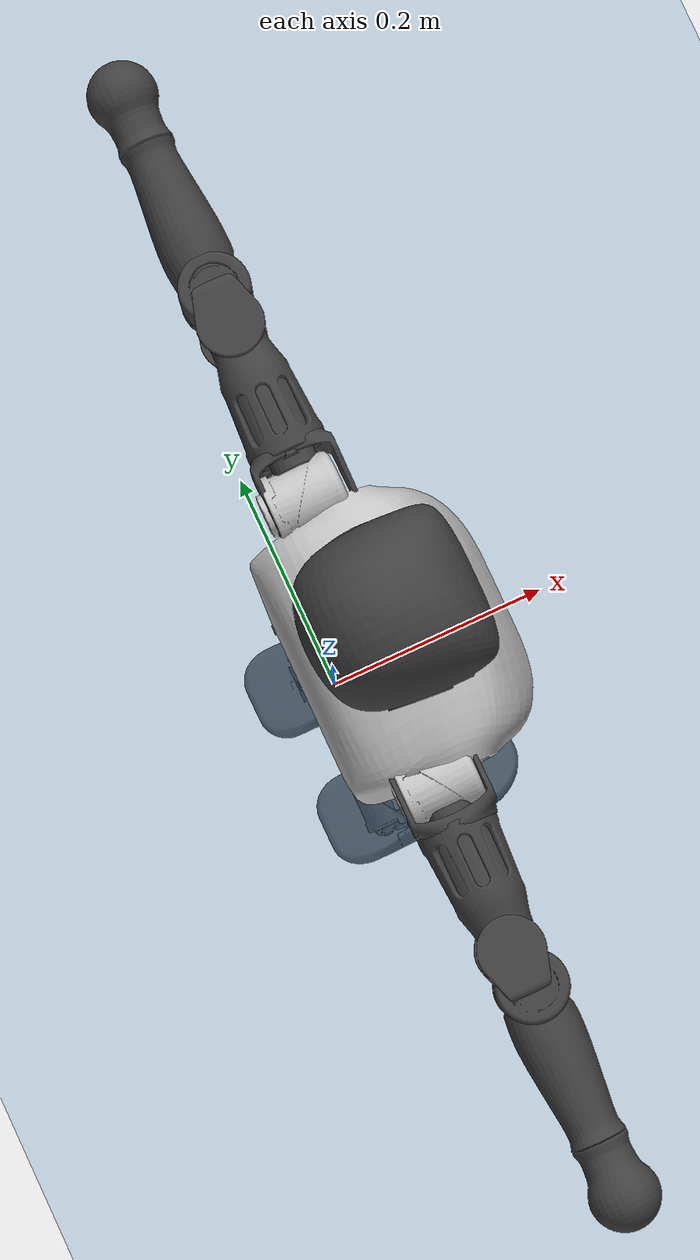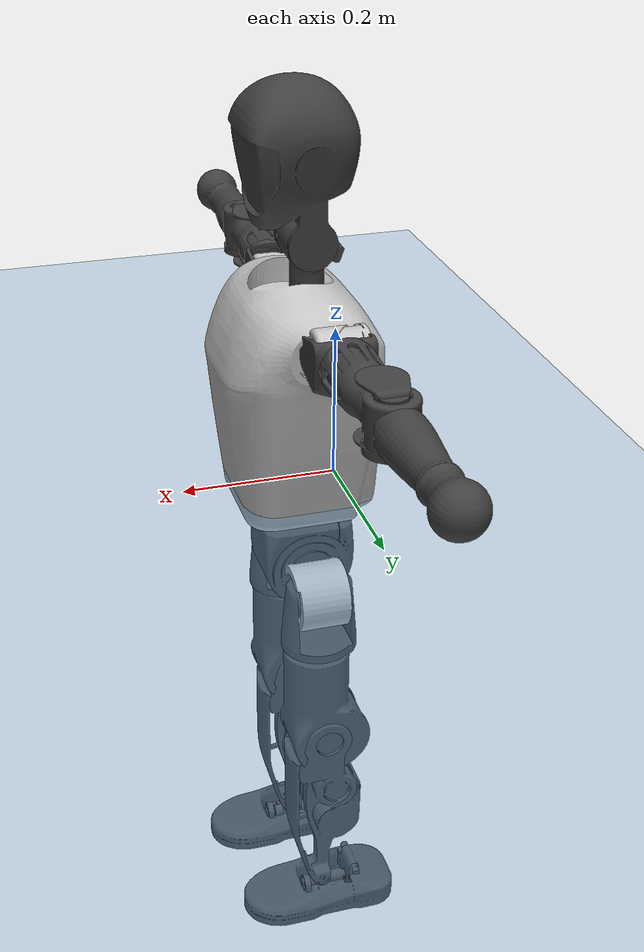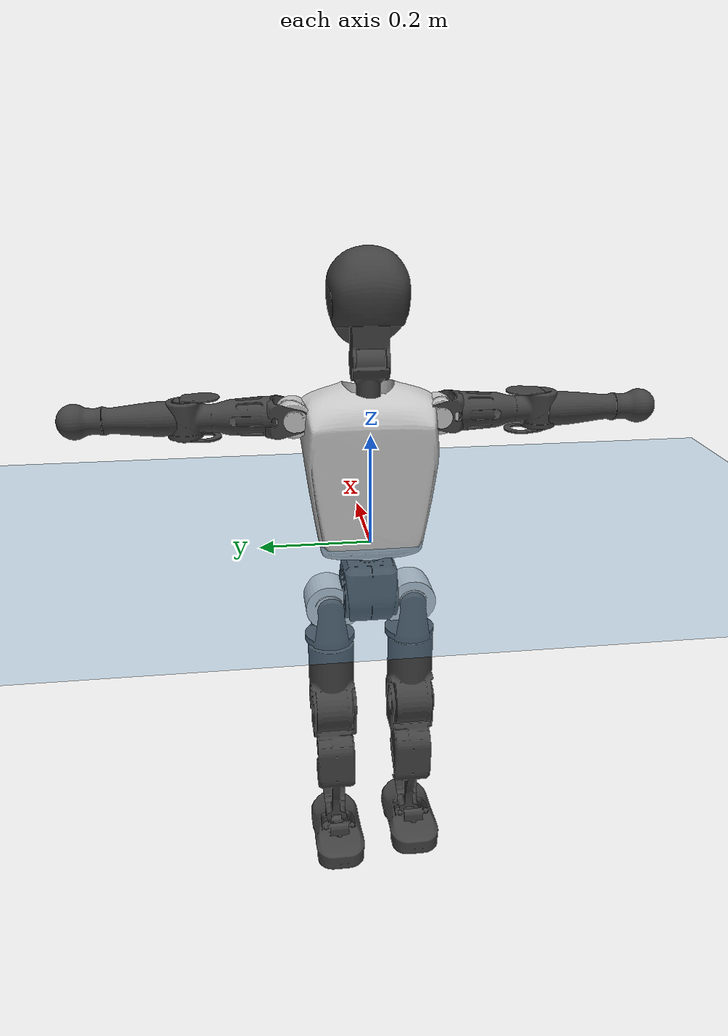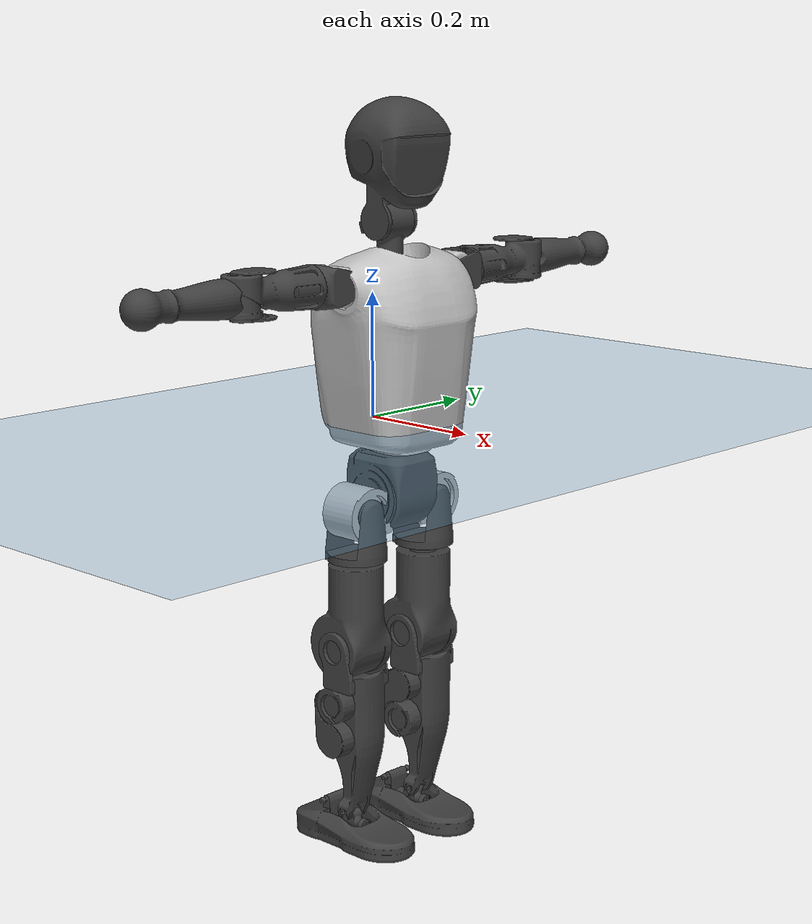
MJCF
<mujoco model="T1">
  <compiler angle="radian" assetdir="assets" balanceinertia="true" inertiafromgeom="false"/>

  <option timestep="0.005" density="1.2" viscosity="2e-05"/>

  <size nkey="1"/>

  <visual>
    <quality shadowsize="8192"/>
    <map shadowclip="0.5"/>
  </visual>

  <default>
    <default class="/">
      <joint armature="0.01" damping="0.01" frictionloss="0.1"/>
      <geom contype="0" conaffinity="0" group="1" solref="-1000 -80"/>
      <site size="0.01 0.005 0.005" group="5"/>
      <general forcelimited="true" biastype="affine" gainprm="25" biasprm="0 -25 -0.6"/>
      <default class="t1">
        <geom rgba="0.25 0.25 0.25 1"/>
        <default class="visual">
          <geom type="mesh" group="2"/>
        </default>
        <default class="collision">
          <geom group="3"/>
        </default>
        <default class="foot">
          <geom size="0.1115 0.05 0.015" type="box" condim="6" group="4" priority="1" solimp="0.015 1 0.015"/>
        </default>
        <default class="reward_collision_sphere">
          <geom group="5" rgba="1 0 0 1"/>
        </default>
      </default>
    </default>
  </default>

  <asset>
    <texture type="skybox" colorspace="auto" name="//unnamed_texture_0" builtin="gradient" rgb1="0.95 0.95 0.95" rgb2="0.95 0.95 0.95" width="100" height="600"/>
    <texture type="2d" colorspace="auto" name="texplane" builtin="checker" rgb1="0.345 0.575 0.748" rgb2="0.345 0.575 0.748" markrgb="1 1 1" width="512" height="512"/>
    <material name="MatPlane" class="/" texture="texplane" texuniform="true" texrepeat="2 2" specular="0.9"/>
    <mesh name="Trunk" class="/" file="Trunk.stl"/>
    <mesh name="H1" class="/" file="H1.stl"/>
    <mesh name="H2" class="/" file="H2.stl"/>
    <mesh name="AL1" class="/" file="AL1.stl"/>
    <mesh name="AL2" class="/" file="AL2.stl"/>
    <mesh name="AL3" class="/" file="AL3.stl"/>
    <mesh name="left_hand_link" class="/" file="left_hand_link.stl"/>
    <mesh name="AR1" class="/" file="AR1.stl"/>
    <mesh name="AR2" class="/" file="AR2.stl"/>
    <mesh name="AR3" class="/" file="AR3.stl"/>
    <mesh name="right_hand_link" class="/" file="right_hand_link.stl"/>
    <mesh name="Waist" class="/" file="Waist.stl"/>
    <mesh name="Hip_Pitch_Left" class="/" file="Hip_Pitch_Left.stl"/>
    <mesh name="Hip_Roll_Left" class="/" file="Hip_Roll_Left.stl"/>
    <mesh name="Hip_Yaw_Left" class="/" file="Hip_Yaw_Left.stl"/>
    <mesh name="Shank_Left" class="/" file="Shank_Left.stl"/>
    <mesh name="Ankle_Cross_Left" class="/" file="Ankle_Cross_Left.stl"/>
    <mesh name="left_foot_link" class="/" file="left_foot_link.stl"/>
    <mesh name="Hip_Pitch_Right" class="/" file="Hip_Pitch_Right.stl"/>
    <mesh name="Hip_Roll_Right" class="/" file="Hip_Roll_Right.stl"/>
    <mesh name="Hip_Yaw_Right" class="/" file="Hip_Yaw_Right.stl"/>
    <mesh name="Shank_Right" class="/" file="Shank_Right.stl"/>
    <mesh name="Ankle_Cross_Right" class="/" file="Ankle_Cross_Right.stl"/>
    <mesh name="right_foot_link" class="/" file="right_foot_link.stl"/>
  </asset>

  <worldbody>
    <geom name="floor" class="/" size="100 100 0.125" type="plane" group="0" material="MatPlane"/>
    <light name="toplight_shadow" class="/" pos="0 0 5" dir="0.0990148 0.0990148 -0.990148" type="directional" ambient="0.04 0.04 0.04" diffuse="0.55 0.55 0.55" specular="0.12 0.12 0.12"/>
    <light name="toplight_fill" class="/" pos="0 0 5" dir="0.0990148 0.0990148 -0.990148" type="directional" castshadow="false" ambient="0.04 0.04 0.04" diffuse="0.3 0.3 0.3" specular="0.08 0.08 0.08"/>
    <body name="trunk" childclass="t1" pos="0.000281305 -0.00225304 0.000865003" quat="1 -0.000432406 0.000337694 0.000517716">
      <inertial pos="0.0354367 -0.000421419 0.105857" quat="0.999962 -0.000283532 -0.00871206 0.000135938" mass="6.32475" diaginertia="0.0108485 0.019454 0.0666378"/>
      <joint name="//unnamed_joint_0" type="free" armature="0" damping="0" frictionloss="0"/>
      <geom name="//unnamed_geom_1" class="visual" rgba="0.76 0.76 0.76 1" mesh="Trunk"/>
      <geom name="//unnamed_geom_2" class="collision" size="0.0612608 0.0816811 0.122522" pos="0.0393861 0 0.123599" type="box"/>
      <geom name="//unnamed_geom_3" class="reward_collision_sphere" size="0.0939333" pos="0.0393861 0 0.103"/>
      <geom name="//unnamed_geom_4" class="reward_collision_sphere" size="0.0122522" pos="0.0393861 0.0649403 0"/>
      <geom name="//unnamed_geom_5" class="reward_collision_sphere" size="0.0122522" pos="0.0393861 -0.0649403 0"/>
      <geom name="//unnamed_geom_6" class="reward_collision_sphere" size="0.0122522" pos="0.0393861 0.0817484 0.185399"/>
      <geom name="//unnamed_geom_7" class="reward_collision_sphere" size="0.0122522" pos="0.0393861 -0.0817484 0.185399"/>
      <site name="imu" pos="0.00540994 0.0117784 -0.00532186" size="0.00816811"/>
      <camera name="track" pos="0 -1.52801 0" quat="0.707107 0.707107 0 0" mode="trackcom"/>
      <camera name="ego_camera" pos="0.080085 0 0.432598" quat="-0.5 -0.5 0.5 0.5"/>
      <body name="H1" pos="0.0370683 0.00197946 0.253662" quat="0.999999 0.0002071 0.00120505 0.000173614">
        <inertial pos="-0.00306184 -0.00341796 0.0615216" quat="0.760135 -0.011893 0.00456458 0.649641" mass="0.254006" diaginertia="3.10214e-05 6.24991e-05 0.000177739"/>
        <joint name="AAHead_yaw" pos="0 0 0" axis="-0.00460263 -0.00571528 0.999973" range="-1.61981 1.53798" armature="0.00752397" damping="0.0124225" frictionloss="0.083159"/>
        <geom name="//unnamed_geom_8" class="visual" mesh="H1"/>
        <body name="H2" pos="0.000331736 -0.00175215 0.0631218" quat="0.999999 0.000172517 -0.000894231 0.000484795">
          <inertial pos="0.00367443 -0.000307838 0.100343" quat="0.987204 0.108714 -0.0807879 -0.0841596" mass="0.341108" diaginertia="0.00024525 0.000515211 0.00199664"/>
          <joint name="Head_pitch" pos="0 0 0" axis="0.00993983 -0.999919 -0.00794285" range="-1.20774 0.346368" armature="0.00883219" damping="0.00301458" frictionloss="0.0685357"/>
          <geom name="//unnamed_geom_9" class="visual" mesh="H2"/>
          <geom name="//unnamed_geom_10" class="collision" size="0.0653449" pos="0.00656435 0 0.113299"/>
          <geom name="//unnamed_geom_11" class="reward_collision_sphere" size="0.073513" pos="0.0131287 0 0.103"/>
        </body>
      </body>
      <body name="AL1" pos="0.036611 0.0865328 0.227715" quat="1 -1.6577e-05 0.000285845 0.000115218">
        <inertial pos="0.00107118 0.0349317 -0.00338091" quat="0.503764 0.494483 -0.507426 0.494193" mass="0.285572" diaginertia="0.000160998 0.000327194 0.000329194"/>
        <joint name="Left_Shoulder_Pitch" pos="0 0 0" axis="-0.000867289 0.999958 0.00908417" stiffness="0.00968927" range="-3.33351 1.17737" armature="0.00732061" damping="0.005811" frictionloss="0.0782382"/>
        <geom name="//unnamed_geom_12" class="visual" rgba="0.76 0.76 0.76 1" mesh="AL1"/>
        <body name="AL2" pos="0.00410479 0.0398302 -0.00103944" quat="1 -0.000247895 -0.000116359 -3.11484e-06">
          <inertial pos="0.00459747 0.0268806 0.000222997" quat="0.487675 0.513359 -0.487853 0.510525" mass="0.0912397" diaginertia="4.97115e-05 9.04581e-05 0.000211388"/>
          <joint name="Left_Shoulder_Roll" pos="0 0 0" axis="-0.999923 0.00674334 -0.0103883" range="-1.55935 1.77059" armature="0.00857024" damping="0.0122555" frictionloss="0.0850394"/>
          <geom name="//unnamed_geom_13" class="visual" mesh="AL2"/>
          <body name="AL3" pos="1.62957e-05 0.0450108 0.00256245" quat="1 -2.045e-05 0.000168393 2.21393e-05">
            <inertial pos="-0.00222824 0.0653184 0.000209147" quat="0.700865 0.713268 -0.0041674 0.0043855" mass="0.536067" diaginertia="0.00157456 0.00325878 0.000729918"/>
            <joint name="Left_Elbow_Pitch" pos="0 0 0" axis="-0.0001333 -1 -0.000105683" range="-2.32706 2.23128" armature="0.0079332" damping="0" frictionloss="0.0724629"/>
            <geom name="//unnamed_geom_14" class="visual" mesh="AL3"/>
            <geom name="//unnamed_geom_15" class="collision" size="0.0245043 0.0612608" pos="0 0.0382002 0" quat="0.707105 0.707108 0 0" type="cylinder"/>
            <geom name="//unnamed_geom_16" class="reward_collision_sphere" size="0.0294052"/>
            <body name="left_hand_link" pos="-0.000613138 0.113925 0.00154197" quat="1 0.000862512 -4.84525e-05 0.000320423">
              <inertial pos="-0.000938515 0.0826322 0.00093306" quat="0.714112 0.69996 -0.00843597 0.00533613" mass="0.17895" diaginertia="0.00100629 0.00205778 0.000249435"/>
              <joint name="Left_Elbow_Yaw" pos="0 0 0" axis="0.000181147 -0.000218811 1" range="-2.47184 -0.0486519" armature="0.00888052" damping="0.0209793" frictionloss="0.0824974"/>
              <geom name="//unnamed_geom_17" class="visual" mesh="left_hand_link"/>
              <geom name="//unnamed_geom_18" class="collision" size="0.0245043 0.071471" pos="0 0.0993205 0" quat="0.707105 0.707108 0 0" type="cylinder"/>
              <geom name="//unnamed_geom_19" class="reward_collision_sphere" size="0.0408406"/>
              <geom name="//unnamed_geom_20" class="reward_collision_sphere" size="0.0285884" pos="0 0.0840404 0"/>
              <geom name="//unnamed_geom_21" class="reward_collision_sphere" size="0.0285884" pos="0 0.164261 0"/>
            </body>
          </body>
        </body>
      </body>
      <body name="AR1" pos="0.0367537 -0.0756814 0.22503" quat="0.999999 0.000213497 -0.00102502 0.000613048">
        <inertial pos="-0.00169153 -0.0372966 0.00255966" quat="0.501693 0.497078 -0.502524 0.498685" mass="0.283567" diaginertia="0.000161613 0.000327709 0.000328707"/>
        <joint name="Right_Shoulder_Pitch" pos="0 0 0" axis="0.0115398 -0.999879 0.0104309" range="-1.1934 3.29623" armature="0.00704736" damping="0.0116149" frictionloss="0.0714558"/>
        <geom name="//unnamed_geom_22" class="visual" rgba="0.76 0.76 0.76 1" mesh="AR1"/>
        <body name="AR2" pos="0.000261408 -0.0340852 0.00162623" quat="1 1.01541e-05 -1.20757e-05 -1.41571e-05">
          <inertial pos="-0.000292519 -0.026635 -0.00112339" quat="0.512461 0.48451 -0.510711 0.49174" mass="0.0855338" diaginertia="4.83052e-05 9.10473e-05 0.000203897"/>
          <joint name="Right_Shoulder_Roll" pos="0 0 0" axis="-0.999985 0.00192253 0.00505016" range="-1.78577 1.52539" armature="0.00816063" damping="0.00629803" frictionloss="0.0763586"/>
          <geom name="//unnamed_geom_23" class="visual" mesh="AR2"/>
          <body name="AR3" pos="-0.00217436 -0.0475064 0.000582252" quat="1 5.66647e-05 1.80304e-05 0.000344227">
            <inertial pos="-0.00333848 -0.0654153 0.00307172" quat="0.705064 0.709082 0.00321788 -0.00885345" mass="0.550218" diaginertia="0.00154396 0.00309814 0.00067644"/>
            <joint name="Right_Elbow_Pitch" pos="0 0 0" axis="-0.00186907 0.999951 0.00975805" range="-2.32189 2.34067" armature="0.00772722" damping="0.0129224" frictionloss="0.0910751"/>
            <geom name="//unnamed_geom_24" class="visual" mesh="AR3"/>
            <geom name="//unnamed_geom_25" class="collision" size="0.0245043 0.0612608" pos="0 -0.0382002 0" quat="0.707105 0.707108 0 0" type="cylinder"/>
            <geom name="//unnamed_geom_26" class="reward_collision_sphere" size="0.0294052"/>
            <body name="right_hand_link" pos="-0.00309737 -0.113762 -0.0012213" quat="1 -1.89838e-05 -3.25089e-05 1.05114e-05">
              <inertial pos="-0.00245397 -0.0809404 0.00165295" quat="0.705369 0.708831 0.00189905 0.00321016" mass="0.190778" diaginertia="0.0010733 0.00215238 0.000252974"/>
              <joint name="Right_Elbow_Yaw" pos="0 0 0" axis="0.000699173 0.001812 0.999998" range="-0.0133176 2.45324" armature="0.00720364" damping="0.0168854" frictionloss="0.0814235"/>
              <geom name="//unnamed_geom_27" class="visual" mesh="right_hand_link"/>
              <geom name="//unnamed_geom_28" class="collision" size="0.0245043 0.071471" pos="0 -0.0993205 0" quat="0.707105 0.707108 0 0" type="cylinder"/>
              <geom name="//unnamed_geom_29" class="reward_collision_sphere" size="0.0408406"/>
              <geom name="//unnamed_geom_30" class="reward_collision_sphere" size="0.0285884" pos="0 -0.0840404 0"/>
              <geom name="//unnamed_geom_31" class="reward_collision_sphere" size="0.0285884" pos="0 -0.164261 0"/>
            </body>
          </body>
        </body>
      </body>
      <body name="Waist" pos="0.0428053 0.000990016 -0.116457" quat="1 -3.00206e-05 -0.000730724 0.000480217">
        <inertial pos="0.00523592 -2.23402e-05 0.00623748" quat="0.983246 0.00198363 -0.182184 0.00562261" mass="1.38058" diaginertia="0.000619759 0.0013175 0.00535287"/>
        <joint name="Waist" pos="0 0 0" axis="-0.0105172 -0.00891965 0.999905" range="-1.61817 1.51914" armature="0.00832743" damping="0.0176284" frictionloss="0.0892064"/>
        <geom name="//unnamed_geom_32" class="visual" mesh="Waist"/>
        <body name="Hip_Pitch_Left" pos="0.00221998 0.0777135 -0.000559285" quat="1 -6.62148e-06 0.000205071 -0.000349388">
          <inertial pos="-0.00158261 -0.00529925 -0.0177094" quat="0.97658 0.213884 0.0224793 -0.0062924" mass="0.543841" diaginertia="0.000214097 0.000367467 0.00140752"/>
          <joint name="Left_Hip_Pitch" pos="0 0 0" axis="0.00485978 0.999905 -0.0128683" stiffness="0.00994647" range="-1.76416 1.55878" armature="0.00710321" damping="0.00538186" frictionloss="0.0783667"/>
          <geom name="//unnamed_geom_33" class="visual" rgba="0.76 0.76 0.76 1" mesh="Hip_Pitch_Left"/>
          <body name="Hip_Roll_Left" pos="-0.00153968 -0.00225045 -0.0217182" quat="1 -8.22092e-05 -0.000294341 0.000848962">
            <inertial pos="-0.00115848 0.000926838 -0.0550643" quat="0.707225 -0.0038759 -8.10771e-06 0.706978" mass="0.21018" diaginertia="0.000210396 0.000395525 0.000604955"/>
            <joint name="Left_Hip_Roll" pos="0 0 0" axis="-0.999898 -0.01404 -0.00270224" stiffness="0.00608408" range="-1.61976 0.170444" armature="0.00887764" damping="0.0201291" frictionloss="0.086057"/>
            <geom name="//unnamed_geom_34" class="visual" mesh="Hip_Roll_Left"/>
            <geom name="//unnamed_geom_35" class="reward_collision_sphere" size="0.0449246"/>
            <body name="Hip_Yaw_Left" pos="-0.000289049 -0.00198625 -0.0887206" quat="1 -2.38444e-05 -8.43137e-05 -0.000338807">
              <inertial pos="-0.006613 -0.000118912 -0.0892586" quat="0.696194 -0.0331983 -0.0338197 0.716288" mass="1.21025" diaginertia="0.00333412 0.00695346 0.00317831"/>
              <joint name="Left_Hip_Yaw" pos="0 0 0" axis="-0.00307332 0.00247322 -0.999992" range="-1.05459 0.940042" armature="0.00901132" damping="0.0265872" frictionloss="0.0792031"/>
              <geom name="//unnamed_geom_36" class="visual" mesh="Hip_Yaw_Left"/>
              <geom name="//unnamed_geom_37" class="collision" size="0.0408406 0.0653449" type="cylinder"/>
              <body name="Shank_Left" pos="-0.00899423 -0.00300296 -0.136704" quat="1 0.000237001 -0.000494011 -0.000787951">
                <inertial pos="-0.00563048 0.00126679 -0.127818" quat="0.998014 -0.00689139 -0.0204779 0.0591634" mass="0.913917" diaginertia="0.0041312 0.00857089 0.00207609"/>
                <joint name="Left_Knee_Pitch" pos="0 0 0" axis="-0.00722638 0.999967 0.00367485" range="0.0385741 2.34654" armature="0.00809755" damping="0" frictionloss="0.0708841"/>
                <geom name="//unnamed_geom_38" class="visual" mesh="Shank_Left"/>
                <geom name="//unnamed_geom_39" class="collision" size="0.0408406 0.0612608" pos="0 0 -0.123599" type="cylinder"/>
                <geom name="//unnamed_geom_40" class="reward_collision_sphere" size="0.0530927"/>
                <body name="Ankle_Cross_Left" pos="-0.00433238 -0.00348971 -0.288605" quat="0.999999 -0.000311438 -0.000699243 0.00113844">
                  <inertial pos="-0.000858769 -0.00146135 -0.00809385" quat="0.442238 0.552262 0.548992 0.445016" mass="0.0391719" diaginertia="3.60299e-06 6.79691e-06 1.293e-05"/>
                  <joint name="Left_Ankle_Pitch" pos="0 0 0" axis="-0.000106082 1 1.07504e-05" stiffness="0.0100835" range="-0.900007 0.396335" armature="0.00855007" damping="0.0210495" frictionloss="0.0893644"/>
                  <geom name="//unnamed_geom_41" class="visual" mesh="Ankle_Cross_Left"/>
                  <body name="left_foot_link" pos="-0.00335358 0.00172868 -0.0140545" quat="0.999999 -0.000814278 0.00067558 0.00054701">
                    <inertial pos="0.00127813 -0.000867699 -0.0119318" quat="-0.00804081 0.625461 -0.00210544 0.780211" mass="0.365024" diaginertia="0.00033589 0.000637795 0.00253236"/>
                    <joint name="Left_Ankle_Roll" pos="0 0 0" axis="-0.999997 0.00217423 0.000602453" stiffness="0.000520602" range="-0.420385 0.472631" armature="0.0090943" damping="0.00296032" frictionloss="0.0872081"/>
                    <geom name="//unnamed_geom_42" class="visual" mesh="left_foot_link"/>
                    <geom name="left_foot" class="foot" size="0.100729 0.0381336 0.0116192" pos="0.00656435 0 -0.0154499"/>
                    <geom name="//unnamed_geom_44" class="reward_collision_sphere" size="0.0424742" pos="0.00656435 0 -0.0154499"/>
                    <geom name="//unnamed_geom_45" class="reward_collision_sphere" size="0.0245043" pos="0.0623613 -0.0175721 -0.0154499"/>
                    <geom name="//unnamed_geom_46" class="reward_collision_sphere" size="0.0245043" pos="-0.0459504 -0.0175721 -0.0154499"/>
                    <site name="left_foot" class="foot" pos="0.00656435 0 -0.0154499" size="0.00816811"/>
                  </body>
                </body>
              </body>
            </body>
          </body>
        </body>
        <body name="Hip_Pitch_Right" pos="0.00475994 -0.0817997 0.000205955" quat="1 -0.000163438 -0.000392255 -0.000125312">
          <inertial pos="0.00259512 0.00512493 -0.0167218" quat="0.974012 -0.225806 0.017654 -0.000299668" mass="0.559829" diaginertia="0.000214024 0.000394779 0.0014135"/>
          <joint name="Right_Hip_Pitch" pos="0 0 0" axis="0.00267346 -0.999995 -0.00149285" range="-1.62257 1.81175" armature="0.00871142" damping="0.0114194" frictionloss="0.0712173"/>
          <geom name="//unnamed_geom_47" class="visual" rgba="0.76 0.76 0.76 1" mesh="Hip_Pitch_Right"/>
          <body name="Hip_Roll_Right" pos="-0.00177936 0.000726886 -0.0202501" quat="1 4.65986e-05 -0.000107407 1.8523e-05">
            <inertial pos="0.00314642 0.00233836 -0.0542639" quat="0.707207 -0.00611527 -0.00523588 0.706961" mass="0.210589" diaginertia="0.000218716 0.000406449 0.000617908"/>
            <joint name="Right_Hip_Roll" pos="0 0 0" axis="-0.999869 -0.0159703 -0.00274615" range="-0.199695 1.62091" armature="0.00895434" damping="0.0153582" frictionloss="0.089769"/>
            <geom name="//unnamed_geom_48" class="visual" mesh="Hip_Roll_Right"/>
            <geom name="//unnamed_geom_49" class="reward_collision_sphere" size="0.0449246"/>
            <body name="Hip_Yaw_Right" pos="-0.00126692 -0.00267707 -0.0839932" quat="1 -6.09152e-05 -1.91113e-05 0.000257092">
              <inertial pos="-0.00621042 -0.00162184 -0.0906912" quat="0.710092 -0.0354296 -0.0200983 0.70293" mass="1.22283" diaginertia="0.00324057 0.00675592 0.00309736"/>
              <joint name="Right_Hip_Yaw" pos="0 0 0" axis="-0.00949715 0.0120766 -0.999882" range="-0.978836 1.02412" armature="0.00797013" damping="0" frictionloss="0.0841135"/>
              <geom name="//unnamed_geom_50" class="visual" mesh="Hip_Yaw_Right"/>
              <geom name="//unnamed_geom_51" class="collision" size="0.0408406 0.0653449" type="cylinder"/>
              <body name="Shank_Right" pos="-0.0106188 -0.00101334 -0.139671" quat="1 0.000458785 -0.000324099 0.00064913">
                <inertial pos="-0.0021626 0.000310251 -0.12463" quat="0.999098 -0.00590399 -0.0203803 -0.0367863" mass="0.913845" diaginertia="0.00415726 0.00889204 0.0022489"/>
                <joint name="Right_Knee_Pitch" pos="0 0 0" axis="-0.00586369 -0.999982 0.00147085" stiffness="0.0115188" range="-2.32618 0.0224676" armature="0.00829399" damping="0" frictionloss="0.0814593"/>
                <geom name="//unnamed_geom_52" class="visual" mesh="Shank_Right"/>
                <geom name="//unnamed_geom_53" class="collision" size="0.0408406 0.0612608" pos="0 0 -0.123599" type="cylinder"/>
                <geom name="//unnamed_geom_54" class="reward_collision_sphere" size="0.0530927"/>
                <body name="Ankle_Cross_Right" pos="0.00497286 -0.000710489 -0.286223" quat="1 -0.000128306 -0.000122984 -0.000242792">
                  <inertial pos="-0.00334607 0.000382156 -0.00730323" quat="0.442738 0.552172 0.5505 0.442762" mass="0.0393571" diaginertia="3.6659e-06 6.62088e-06 1.29887e-05"/>
                  <joint name="Right_Ankle_Pitch" pos="0 0 0" axis="-0.00443462 -0.999989 0.00177595" stiffness="0.0100305" range="-0.283784 0.886048" armature="0.00826295" damping="0.00888575" frictionloss="0.0748955"/>
                  <geom name="//unnamed_geom_55" class="visual" mesh="Ankle_Cross_Right"/>
                  <body name="right_foot_link" pos="0.00119515 -0.00394426 -0.0110097" quat="1 -0.000141821 0.00034535 -0.000171686">
                    <inertial pos="2.98987e-05 0.000235392 -0.00924018" quat="0.00557533 0.613296 0.00334178 0.789826" mass="0.356985" diaginertia="0.000318232 0.000621353 0.00261751"/>
                    <joint name="Right_Ankle_Roll" pos="0 0 0" axis="-0.999934 0.00526666 -0.0102005" range="-0.478124 0.400644" armature="0.00835103" damping="0.0126942" frictionloss="0.0911554"/>
                    <geom name="//unnamed_geom_56" class="visual" mesh="right_foot_link"/>
                    <geom name="right_foot" class="foot" size="0.0947229 0.0469232 0.011797" pos="0.00656435 0 -0.0154499"/>
                    <geom name="//unnamed_geom_58" class="reward_collision_sphere" size="0.0326724"/>
                    <geom name="//unnamed_geom_59" class="reward_collision_sphere" size="0.0245043" pos="0.00656435 0 -0.0154499"/>
                    <geom name="//unnamed_geom_60" class="reward_collision_sphere" size="0.0245043" pos="0.0623613 0.0175721 -0.0154499"/>
                    <geom name="//unnamed_geom_61" class="reward_collision_sphere" size="0.0245043" pos="-0.0459504 0.0175721 -0.0154499"/>
                    <site name="right_foot" class="foot" pos="0.00656435 0 -0.0154499" size="0.00816811"/>
                  </body>
                </body>
              </body>
            </body>
          </body>
        </body>
      </body>
    </body>
  </worldbody>

  <contact>
    <pair class="/" geom1="floor" geom2="left_foot" name="//unnamed_contact_0"/>
    <pair class="/" geom1="floor" geom2="right_foot" name="//unnamed_contact_1"/>
  </contact>

  <actuator>
    <general name="AAHead_yaw" class="/" joint="AAHead_yaw" forcerange="-5.15709 5.15709" gainprm="21.6946" biasprm="0 -21.6946 -0.511578"/>
    <general name="Head_pitch" class="/" joint="Head_pitch" forcerange="-6.29565 6.29565" gainprm="21.6946" biasprm="0 -21.6946 -0.511578"/>
    <general name="Left_Shoulder_Pitch" class="/" joint="Left_Shoulder_Pitch" forcerange="-16.5336 16.5336" gainprm="21.6946" biasprm="0 -21.6946 -0.511578"/>
    <general name="Left_Shoulder_Roll" class="/" joint="Left_Shoulder_Roll" forcerange="-15.1766 15.1766" gainprm="21.6946" biasprm="0 -21.6946 -0.511578"/>
    <general name="Left_Elbow_Pitch" class="/" joint="Left_Elbow_Pitch" forcerange="-13.4888 13.4888" gainprm="21.6946" biasprm="0 -21.6946 -0.511578"/>
    <general name="Left_Elbow_Yaw" class="/" joint="Left_Elbow_Yaw" forcerange="-15.1849 15.1849" gainprm="21.6946" biasprm="0 -21.6946 -0.511578"/>
    <general name="Right_Shoulder_Pitch" class="/" joint="Right_Shoulder_Pitch" forcerange="-13.6925 13.6925" gainprm="21.6946" biasprm="0 -21.6946 -0.511578"/>
    <general name="Right_Shoulder_Roll" class="/" joint="Right_Shoulder_Roll" forcerange="-14.3541 14.3541" gainprm="21.6946" biasprm="0 -21.6946 -0.511578"/>
    <general name="Right_Elbow_Pitch" class="/" joint="Right_Elbow_Pitch" forcerange="-13.6382 13.6382" gainprm="21.6946" biasprm="0 -21.6946 -0.511578"/>
    <general name="Right_Elbow_Yaw" class="/" joint="Right_Elbow_Yaw" forcerange="-13.5835 13.5835" gainprm="21.6946" biasprm="0 -21.6946 -0.511578"/>
    <general name="Waist" class="/" joint="Waist" forcerange="-22.7285 22.7285" gainprm="21.6946" biasprm="0 -21.6946 -0.511578"/>
    <general name="Left_Hip_Pitch" class="/" joint="Left_Hip_Pitch" forcerange="-36.2658 36.2658" gainprm="21.6946" biasprm="0 -21.6946 -0.511578"/>
    <general name="Left_Hip_Roll" class="/" joint="Left_Hip_Roll" forcerange="-22.4951 22.4951" gainprm="21.6946" biasprm="0 -21.6946 -0.511578"/>
    <general name="Left_Hip_Yaw" class="/" joint="Left_Hip_Yaw" forcerange="-22.5497 22.5497" gainprm="21.6946" biasprm="0 -21.6946 -0.511578"/>
    <general name="Left_Knee_Pitch" class="/" joint="Left_Knee_Pitch" forcerange="-53.3799 53.3799" gainprm="21.6946" biasprm="0 -21.6946 -0.511578"/>
    <general name="Left_Ankle_Pitch" class="/" joint="Left_Ankle_Pitch" forcerange="-15.1197 15.1197" gainprm="21.6946" biasprm="0 -21.6946 -0.511578"/>
    <general name="Left_Ankle_Roll" class="/" joint="Left_Ankle_Roll" forcerange="-12.687 12.687" gainprm="21.6946" biasprm="0 -21.6946 -0.511578"/>
    <general name="Right_Hip_Pitch" class="/" joint="Right_Hip_Pitch" forcerange="-36.1823 36.1823" gainprm="21.6946" biasprm="0 -21.6946 -0.511578"/>
    <general name="Right_Hip_Roll" class="/" joint="Right_Hip_Roll" forcerange="-23.5676 23.5676" gainprm="21.6946" biasprm="0 -21.6946 -0.511578"/>
    <general name="Right_Hip_Yaw" class="/" joint="Right_Hip_Yaw" forcerange="-23.9883 23.9883" gainprm="21.6946" biasprm="0 -21.6946 -0.511578"/>
    <general name="Right_Knee_Pitch" class="/" joint="Right_Knee_Pitch" forcerange="-46.6068 46.6068" gainprm="21.6946" biasprm="0 -21.6946 -0.511578"/>
    <general name="Right_Ankle_Pitch" class="/" joint="Right_Ankle_Pitch" forcerange="-16.5716 16.5716" gainprm="21.6946" biasprm="0 -21.6946 -0.511578"/>
    <general name="Right_Ankle_Roll" class="/" joint="Right_Ankle_Roll" forcerange="-12.1648 12.1648" gainprm="21.6946" biasprm="0 -21.6946 -0.511578"/>
  </actuator>

  <sensor>
    <gyro site="imu" name="imu_angular_velocity"/>
    <velocimeter site="imu" name="imu_linear_velocity"/>
    <framelinvel objtype="site" objname="left_foot" name="left_foot_global_linear_velocity"/>
    <framelinvel objtype="site" objname="right_foot" name="right_foot_global_linear_velocity"/>
  </sensor>

  <keyframe>
    <key name="home" qpos="0 0 0.6385 1 0 0 0 0 0 0 1.4 0 -0.4 0 -1.4 0 0.4 0 -0.4 0 0 0.8 -0.4 0 0.4 0 0 -0.8 0.4 0"/>
  </keyframe>
</mujoco>
